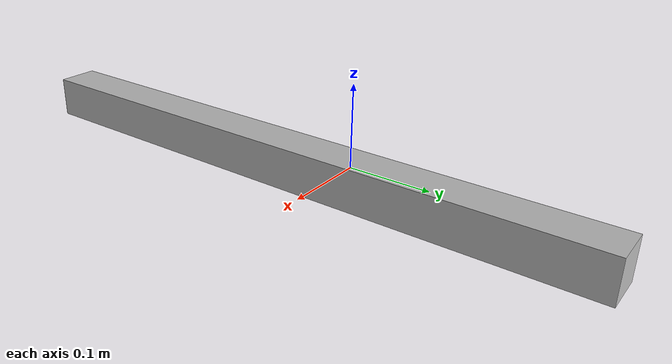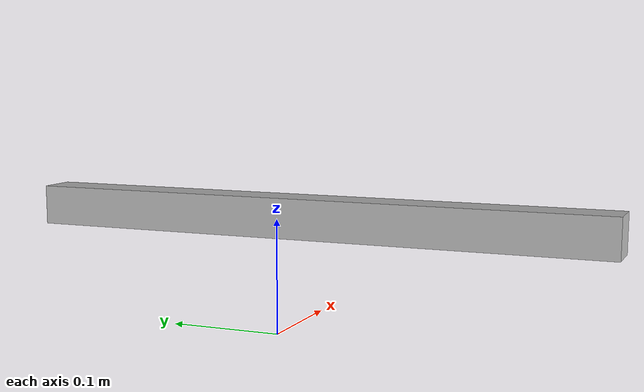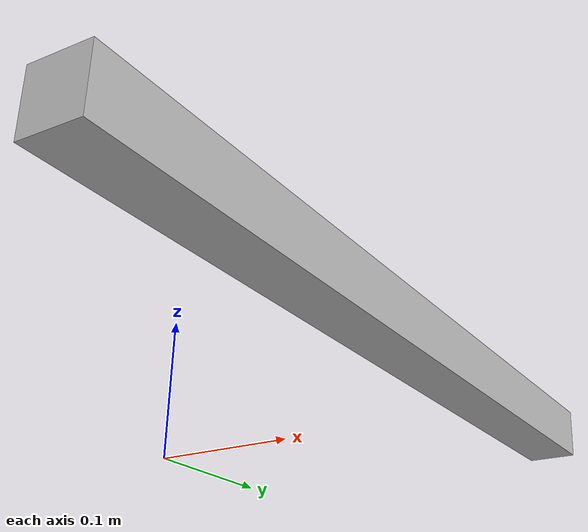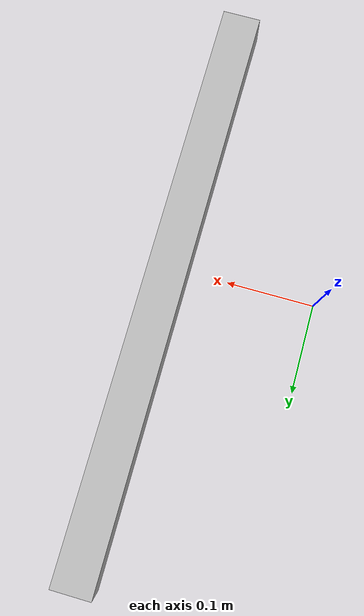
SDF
<?xml version="1.0" ?>
<sdf version="1.4">
  <model name="ladder">
    <pose>0.160203 0.033734 0.077975  0 0 0</pose>
     <static>true</static>
    <link name="link">
      <collision name="collision">
        <geometry>
          <mesh>
            <uri>model://ladder/ladder.dae</uri>
          </mesh>
        </geometry>
      </collision>
      <visual name="visual">
        <geometry>
          <mesh>
            <uri>model://ladder/ladder.dae</uri>
          </mesh>
        </geometry>
      </visual>
    </link>
  </model>
</sdf>
